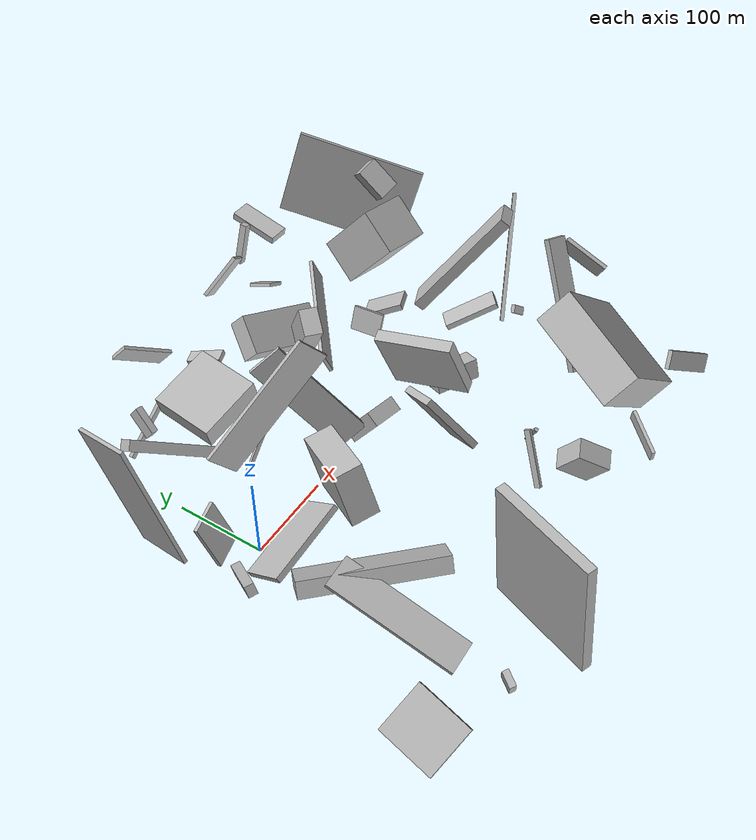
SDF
<sdf version="1.6">
 <world name="default">
  <scene>
   <sky><clouds><speed>12</speed></clouds></sky>
   <ambient>0.4 0.4 0.4 1</ambient>
   <background>0.7 0.7 0.7 1</background>
   <shadows>1</shadows>
  </scene>
  <gravity>0 0 -9.8066</gravity>
  <magnetic_field>6e-06 2.3e-05 -4.2e-05</magnetic_field>
  <physics default="0" name="default_physics" type="ode">
   <ode>
    <solver>
     <type>quick</type>
     <iters>10</iters>
     <sor>1.0</sor>
     <use_dynamic_moi_rescaling>0</use_dynamic_moi_rescaling>
    </solver>
    <constraints>
     <cfm>0</cfm>
     <erp>0.2</erp>
     <contact_max_correcting_vel>100</contact_max_correcting_vel>
     <contact_surface_layer>0.001</contact_surface_layer>
    </constraints>
   </ode>
   <max_step_size>0.004</max_step_size>
   <real_time_factor>1</real_time_factor>
   <real_time_update_rate>250</real_time_update_rate>
  </physics>
  <light name="sun" type="directional">
   <pose>0 0 10 0 0 0</pose>
   <diffuse>0.8 0.8 0.8 1</diffuse>
   <specular>0.2 0.2 0.2 1</specular>
   <attenuation>
    <range>1000</range>
    <constant>0.9</constant>
    <linear>0.01</linear>
    <quadratic>0.001</quadratic>
   </attenuation>
   <direction>-0.5 0.1 -0.9</direction>
  </light>
  <model name="building_1">
   <static>0</static>
   <pose>265.21856332734376 184.51601783542299 64.46360928404098 0.6908139448384183 0.07442384024645911 2.036456000822103</pose>
   <link name="link">
    <gravity>0</gravity>
    <pose>0 0 2.0 0 0 0</pose>
    <collision name="collision"><geometry><box><size>22 59 4</size></box></geometry></collision>
    <visual name="visual">
     <cast_shadows>0</cast_shadows>
     <geometry><box><size>22 59 4</size></box></geometry>
     <material>
      <script>
       <uri>model://HANNAS_wall/materials/scripts</uri>
       <uri>model://HANNAS_wall/materials/textures</uri>
       <name>vrc/HANNAS_wall</name>
      </script>
     </material>
    </visual>
   </link>
  </model>
  <model name="building_2">
   <static>0</static>
   <pose>328.64471478039263 -190.22076026287914 87.66876122134258 0.8125490074336644 -0.3598709219311265 1.2293084378363335</pose>
   <link name="link">
    <gravity>0</gravity>
    <pose>0 0 22.0 0 0 0</pose>
    <collision name="collision"><geometry><box><size>111 150 44</size></box></geometry></collision>
    <visual name="visual">
     <cast_shadows>0</cast_shadows>
     <geometry><box><size>111 150 44</size></box></geometry>
     <material>
      <script>
       <uri>model://HANNAS_wall/materials/scripts</uri>
       <uri>model://HANNAS_wall/materials/textures</uri>
       <name>vrc/HANNAS_wall</name>
      </script>
     </material>
    </visual>
   </link>
  </model>
  <model name="building_3">
   <static>0</static>
   <pose>317.6571069149756 84.82014768897221 17.64443904204941 -3.104940192499309 -1.1440837828563926 0.08218264495203423</pose>
   <link name="link">
    <gravity>0</gravity>
    <pose>0 0 2.0 0 0 0</pose>
    <collision name="collision"><geometry><box><size>28 36 4</size></box></geometry></collision>
    <visual name="visual">
     <cast_shadows>0</cast_shadows>
     <geometry><box><size>28 36 4</size></box></geometry>
     <material>
      <script>
       <uri>model://HANNAS_wall/materials/scripts</uri>
       <uri>model://HANNAS_wall/materials/textures</uri>
       <name>vrc/HANNAS_wall</name>
      </script>
     </material>
    </visual>
   </link>
  </model>
  <model name="building_4">
   <static>0</static>
   <pose>331.9274241886119 266.84225531832067 39.38900888820609 1.5164309389571287 -0.2989147448461797 -3.073223350557152</pose>
   <link name="link">
    <gravity>0</gravity>
    <pose>0 0 4.0 0 0 0</pose>
    <collision name="collision"><geometry><box><size>9 50 8</size></box></geometry></collision>
    <visual name="visual">
     <cast_shadows>0</cast_shadows>
     <geometry><box><size>9 50 8</size></box></geometry>
     <material>
      <script>
       <uri>model://HANNAS_wall/materials/scripts</uri>
       <uri>model://HANNAS_wall/materials/textures</uri>
       <name>vrc/HANNAS_wall</name>
      </script>
     </material>
    </visual>
   </link>
  </model>
  <model name="building_5">
   <static>0</static>
   <pose>202.1581988308891 -83.73595705563194 56.36848250867061 1.0411006923561188 0.3923190019475035 1.1186620954028903</pose>
   <link name="link">
    <gravity>0</gravity>
    <pose>0 0 4.0 0 0 0</pose>
    <collision name="collision"><geometry><box><size>46 81 8</size></box></geometry></collision>
    <visual name="visual">
     <cast_shadows>0</cast_shadows>
     <geometry><box><size>46 81 8</size></box></geometry>
     <material>
      <script>
       <uri>model://HANNAS_wall/materials/scripts</uri>
       <uri>model://HANNAS_wall/materials/textures</uri>
       <name>vrc/HANNAS_wall</name>
      </script>
     </material>
    </visual>
   </link>
  </model>
  <model name="building_6">
   <static>0</static>
   <pose>385.00221197579236 -66.46883736437205 61.60739721136558 2.3489417181520196 0.12633181593935808 1.8454128748856702</pose>
   <link name="link">
    <gravity>0</gravity>
    <pose>0 0 22.0 0 0 0</pose>
    <collision name="collision"><geometry><box><size>4 9 44</size></box></geometry></collision>
    <visual name="visual">
     <cast_shadows>0</cast_shadows>
     <geometry><box><size>4 9 44</size></box></geometry>
     <material>
      <script>
       <uri>model://HANNAS_wall/materials/scripts</uri>
       <uri>model://HANNAS_wall/materials/textures</uri>
       <name>vrc/HANNAS_wall</name>
      </script>
     </material>
    </visual>
   </link>
  </model>
  <model name="building_7">
   <static>0</static>
   <pose>97.44094176299929 139.80659487148694 65.88014264446177 2.9160895541059 -0.03517283254997474 1.465190993637546</pose>
   <link name="link">
    <gravity>0</gravity>
    <pose>0 0 12.0 0 0 0</pose>
    <collision name="collision"><geometry><box><size>74 74 24</size></box></geometry></collision>
    <visual name="visual">
     <cast_shadows>0</cast_shadows>
     <geometry><box><size>74 74 24</size></box></geometry>
     <material>
      <script>
       <uri>model://HANNAS_wall/materials/scripts</uri>
       <uri>model://HANNAS_wall/materials/textures</uri>
       <name>vrc/HANNAS_wall</name>
      </script>
     </material>
    </visual>
   </link>
  </model>
  <model name="building_8">
   <static>0</static>
   <pose>46.27109458085706 187.68211550726627 34.1573580077763 -1.7635629406961664 0.5972119971162401 -1.8299132966659717</pose>
   <link name="link">
    <gravity>0</gravity>
    <pose>0 0 4.0 0 0 0</pose>
    <collision name="collision"><geometry><box><size>31 16 8</size></box></geometry></collision>
    <visual name="visual">
     <cast_shadows>0</cast_shadows>
     <geometry><box><size>31 16 8</size></box></geometry>
     <material>
      <script>
       <uri>model://HANNAS_wall/materials/scripts</uri>
       <uri>model://HANNAS_wall/materials/textures</uri>
       <name>vrc/HANNAS_wall</name>
      </script>
     </material>
    </visual>
   </link>
  </model>
  <model name="building_9">
   <static>0</static>
   <pose>464.33969402716286 -132.99966605019546 89.13782604947892 1.0727289330541918 0.23367158484802786 -3.1383034386376285</pose>
   <link name="link">
    <gravity>0</gravity>
    <pose>0 0 26.5 0 0 0</pose>
    <collision name="collision"><geometry><box><size>5 22 53</size></box></geometry></collision>
    <visual name="visual">
     <cast_shadows>0</cast_shadows>
     <geometry><box><size>5 22 53</size></box></geometry>
     <material>
      <script>
       <uri>model://HANNAS_wall/materials/scripts</uri>
       <uri>model://HANNAS_wall/materials/textures</uri>
       <name>vrc/HANNAS_wall</name>
      </script>
     </material>
    </visual>
   </link>
  </model>
  <model name="building_10">
   <static>0</static>
   <pose>357.4033292517219 236.10567688934788 48.10613483106374 0.0824762773227775 -1.4192140599474705 -1.7229216356901125</pose>
   <link name="link">
    <gravity>0</gravity>
    <pose>0 0 30.0 0 0 0</pose>
    <collision name="collision"><geometry><box><size>9 23 60</size></box></geometry></collision>
    <visual name="visual">
     <cast_shadows>0</cast_shadows>
     <geometry><box><size>9 23 60</size></box></geometry>
     <material>
      <script>
       <uri>model://HANNAS_wall/materials/scripts</uri>
       <uri>model://HANNAS_wall/materials/textures</uri>
       <name>vrc/HANNAS_wall</name>
      </script>
     </material>
    </visual>
   </link>
  </model>
  <model name="building_11">
   <static>0</static>
   <pose>327.7306128091706 18.30774589388291 78.18219950126488 -0.6289102928126492 -0.08888108869729276 -2.7355845074651444</pose>
   <link name="link">
    <gravity>0</gravity>
    <pose>0 0 75.0 0 0 0</pose>
    <collision name="collision"><geometry><box><size>29 12 150</size></box></geometry></collision>
    <visual name="visual">
     <cast_shadows>0</cast_shadows>
     <geometry><box><size>29 12 150</size></box></geometry>
     <material>
      <script>
       <uri>model://HANNAS_wall/materials/scripts</uri>
       <uri>model://HANNAS_wall/materials/textures</uri>
       <name>vrc/HANNAS_wall</name>
      </script>
     </material>
    </visual>
   </link>
  </model>
  <model name="building_12">
   <static>0</static>
   <pose>-66.99200167604985 -259.3309068329781 29.86132267613422 -2.597233224709545 1.0079027287478066 0.34873878519639095</pose>
   <link name="link">
    <gravity>0</gravity>
    <pose>0 0 28.0 0 0 0</pose>
    <collision name="collision"><geometry><box><size>11 63 56</size></box></geometry></collision>
    <visual name="visual">
     <cast_shadows>0</cast_shadows>
     <geometry><box><size>11 63 56</size></box></geometry>
     <material>
      <script>
       <uri>model://HANNAS_wall/materials/scripts</uri>
       <uri>model://HANNAS_wall/materials/textures</uri>
       <name>vrc/HANNAS_wall</name>
      </script>
     </material>
    </visual>
   </link>
  </model>
  <model name="building_13">
   <static>0</static>
   <pose>19.555775834697208 -119.53058251219682 40.05050934233191 0.9923856038388961 0.004344139414071109 -0.7912219682348802</pose>
   <link name="link">
    <gravity>0</gravity>
    <pose>0 0 18.0 0 0 0</pose>
    <collision name="collision"><geometry><box><size>150 18 36</size></box></geometry></collision>
    <visual name="visual">
     <cast_shadows>0</cast_shadows>
     <geometry><box><size>150 18 36</size></box></geometry>
     <material>
      <script>
       <uri>model://HANNAS_wall/materials/scripts</uri>
       <uri>model://HANNAS_wall/materials/textures</uri>
       <name>vrc/HANNAS_wall</name>
      </script>
     </material>
    </visual>
   </link>
  </model>
  <model name="building_14">
   <static>0</static>
   <pose>-58.04304506395429 -30.00019462312246 32.083729900454486 0.5466696450437737 0.17057812996199656 2.6197668270785543</pose>
   <link name="link">
    <gravity>0</gravity>
    <pose>0 0 6.0 0 0 0</pose>
    <collision name="collision"><geometry><box><size>10 62 12</size></box></geometry></collision>
    <visual name="visual">
     <cast_shadows>0</cast_shadows>
     <geometry><box><size>10 62 12</size></box></geometry>
     <material>
      <script>
       <uri>model://HANNAS_wall/materials/scripts</uri>
       <uri>model://HANNAS_wall/materials/textures</uri>
       <name>vrc/HANNAS_wall</name>
      </script>
     </material>
    </visual>
   </link>
  </model>
  <model name="building_15">
   <static>0</static>
   <pose>212.95386073540806 122.66360236571569 39.571967928698555 0.9381762908509872 -0.34827626853729887 2.83561194511519</pose>
   <link name="link">
    <gravity>0</gravity>
    <pose>0 0 22.0 0 0 0</pose>
    <collision name="collision"><geometry><box><size>93 25 44</size></box></geometry></collision>
    <visual name="visual">
     <cast_shadows>0</cast_shadows>
     <geometry><box><size>93 25 44</size></box></geometry>
     <material>
      <script>
       <uri>model://HANNAS_wall/materials/scripts</uri>
       <uri>model://HANNAS_wall/materials/textures</uri>
       <name>vrc/HANNAS_wall</name>
      </script>
     </material>
    </visual>
   </link>
  </model>
  <model name="building_16">
   <static>0</static>
   <pose>432.34963699438754 142.68460319219628 123.12292061015373 2.654695509780527 -0.7302980891216749 1.673761617309005</pose>
   <link name="link">
    <gravity>0</gravity>
    <pose>0 0 11.0 0 0 0</pose>
    <collision name="collision"><geometry><box><size>39 25 22</size></box></geometry></collision>
    <visual name="visual">
     <cast_shadows>0</cast_shadows>
     <geometry><box><size>39 25 22</size></box></geometry>
     <material>
      <script>
       <uri>model://HANNAS_wall/materials/scripts</uri>
       <uri>model://HANNAS_wall/materials/textures</uri>
       <name>vrc/HANNAS_wall</name>
      </script>
     </material>
    </visual>
   </link>
  </model>
  <model name="building_17">
   <static>0</static>
   <pose>29.09484588014437 128.06589483551542 47.44357928841041 -2.32829288619284 0.45638369369764287 -0.6664755146609577</pose>
   <link name="link">
    <gravity>0</gravity>
    <pose>0 0 12.5 0 0 0</pose>
    <collision name="collision"><geometry><box><size>95 12 25</size></box></geometry></collision>
    <visual name="visual">
     <cast_shadows>0</cast_shadows>
     <geometry><box><size>95 12 25</size></box></geometry>
     <material>
      <script>
       <uri>model://HANNAS_wall/materials/scripts</uri>
       <uri>model://HANNAS_wall/materials/textures</uri>
       <name>vrc/HANNAS_wall</name>
      </script>
     </material>
    </visual>
   </link>
  </model>
  <model name="building_18">
   <static>0</static>
   <pose>-24.99963521717325 -66.32042261069773 86.34203610984845 0.27769424703055545 -0.6264185467452116 -1.7920855056713711</pose>
   <link name="link">
    <gravity>0</gravity>
    <pose>0 0 3.0 0 0 0</pose>
    <collision name="collision"><geometry><box><size>55 89 6</size></box></geometry></collision>
    <visual name="visual">
     <cast_shadows>0</cast_shadows>
     <geometry><box><size>55 89 6</size></box></geometry>
     <material>
      <script>
       <uri>model://HANNAS_wall/materials/scripts</uri>
       <uri>model://HANNAS_wall/materials/textures</uri>
       <name>vrc/HANNAS_wall</name>
      </script>
     </material>
    </visual>
   </link>
  </model>
  <model name="building_19">
   <static>0</static>
   <pose>441.18326933755264 189.45827209062813 78.70286360650981 1.7042009371781563 -0.2674405350316269 1.9613524671320002</pose>
   <link name="link">
    <gravity>0</gravity>
    <pose>0 0 2.0 0 0 0</pose>
    <collision name="collision"><geometry><box><size>150 107 4</size></box></geometry></collision>
    <visual name="visual">
     <cast_shadows>0</cast_shadows>
     <geometry><box><size>150 107 4</size></box></geometry>
     <material>
      <script>
       <uri>model://HANNAS_wall/materials/scripts</uri>
       <uri>model://HANNAS_wall/materials/textures</uri>
       <name>vrc/HANNAS_wall</name>
      </script>
     </material>
    </visual>
   </link>
  </model>
  <model name="building_20">
   <static>0</static>
   <pose>27.089855697704607 62.28093358764783 65.29167649971627 -0.08795963705164472 0.8747524765626751 -0.47331563995794157</pose>
   <link name="link">
    <gravity>0</gravity>
    <pose>0 0 75.0 0 0 0</pose>
    <collision name="collision"><geometry><box><size>43 4 150</size></box></geometry></collision>
    <visual name="visual">
     <cast_shadows>0</cast_shadows>
     <geometry><box><size>43 4 150</size></box></geometry>
     <material>
      <script>
       <uri>model://HANNAS_wall/materials/scripts</uri>
       <uri>model://HANNAS_wall/materials/textures</uri>
       <name>vrc/HANNAS_wall</name>
      </script>
     </material>
    </visual>
   </link>
  </model>
  <model name="building_21">
   <static>0</static>
   <pose>395.70985725670835 -37.816306861568016 52.91518112563747 2.003636194343523 0.07392361397343582 -2.380251354311081</pose>
   <link name="link">
    <gravity>0</gravity>
    <pose>0 0 31.0 0 0 0</pose>
    <collision name="collision"><geometry><box><size>20 8 62</size></box></geometry></collision>
    <visual name="visual">
     <cast_shadows>0</cast_shadows>
     <geometry><box><size>20 8 62</size></box></geometry>
     <material>
      <script>
       <uri>model://HANNAS_wall/materials/scripts</uri>
       <uri>model://HANNAS_wall/materials/textures</uri>
       <name>vrc/HANNAS_wall</name>
      </script>
     </material>
    </visual>
   </link>
  </model>
  <model name="building_22">
   <static>0</static>
   <pose>261.5646470436602 -163.67714748189616 26.264165691659194 0.3516222922379382 -1.0883993384659651 -1.7436803925989128</pose>
   <link name="link">
    <gravity>0</gravity>
    <pose>0 0 2.0 0 0 0</pose>
    <collision name="collision"><geometry><box><size>25 4 4</size></box></geometry></collision>
    <visual name="visual">
     <cast_shadows>0</cast_shadows>
     <geometry><box><size>25 4 4</size></box></geometry>
     <material>
      <script>
       <uri>model://HANNAS_wall/materials/scripts</uri>
       <uri>model://HANNAS_wall/materials/textures</uri>
       <name>vrc/HANNAS_wall</name>
      </script>
     </material>
    </visual>
   </link>
  </model>
  <model name="building_23">
   <static>0</static>
   <pose>202.35609051820526 -15.77254288764853 31.06816132876979 1.4432341652562484 0.5977823074192757 -1.7893823661514494</pose>
   <link name="link">
    <gravity>0</gravity>
    <pose>0 0 18.5 0 0 0</pose>
    <collision name="collision"><geometry><box><size>17 51 37</size></box></geometry></collision>
    <visual name="visual">
     <cast_shadows>0</cast_shadows>
     <geometry><box><size>17 51 37</size></box></geometry>
     <material>
      <script>
       <uri>model://HANNAS_wall/materials/scripts</uri>
       <uri>model://HANNAS_wall/materials/textures</uri>
       <name>vrc/HANNAS_wall</name>
      </script>
     </material>
    </visual>
   </link>
  </model>
  <model name="building_24">
   <static>0</static>
   <pose>89.46015456395038 -221.84478063762728 78.76038289278821 -0.8726561924801973 -1.5185023387323 2.090949116879239</pose>
   <link name="link">
    <gravity>0</gravity>
    <pose>0 0 62.0 0 0 0</pose>
    <collision name="collision"><geometry><box><size>150 11 124</size></box></geometry></collision>
    <visual name="visual">
     <cast_shadows>0</cast_shadows>
     <geometry><box><size>150 11 124</size></box></geometry>
     <material>
      <script>
       <uri>model://HANNAS_wall/materials/scripts</uri>
       <uri>model://HANNAS_wall/materials/textures</uri>
       <name>vrc/HANNAS_wall</name>
      </script>
     </material>
    </visual>
   </link>
  </model>
  <model name="building_25">
   <static>0</static>
   <pose>418.72467675669714 112.10614817451543 80.17733810006797 2.4842749909456567 -0.19216767339485802 3.029833811014664</pose>
   <link name="link">
    <gravity>0</gravity>
    <pose>0 0 42.0 0 0 0</pose>
    <collision name="collision"><geometry><box><size>62 53 84</size></box></geometry></collision>
    <visual name="visual">
     <cast_shadows>0</cast_shadows>
     <geometry><box><size>62 53 84</size></box></geometry>
     <material>
      <script>
       <uri>model://HANNAS_wall/materials/scripts</uri>
       <uri>model://HANNAS_wall/materials/textures</uri>
       <name>vrc/HANNAS_wall</name>
      </script>
     </material>
    </visual>
   </link>
  </model>
  <model name="building_26">
   <static>0</static>
   <pose>350.58592943010467 78.9830616935457 17.23930877700365 0.42448736457603803 -0.18053254721408055 -2.744375180266332</pose>
   <link name="link">
    <gravity>0</gravity>
    <pose>0 0 3.5 0 0 0</pose>
    <collision name="collision"><geometry><box><size>31 46 7</size></box></geometry></collision>
    <visual name="visual">
     <cast_shadows>0</cast_shadows>
     <geometry><box><size>31 46 7</size></box></geometry>
     <material>
      <script>
       <uri>model://HANNAS_wall/materials/scripts</uri>
       <uri>model://HANNAS_wall/materials/textures</uri>
       <name>vrc/HANNAS_wall</name>
      </script>
     </material>
    </visual>
   </link>
  </model>
  <model name="building_27">
   <static>0</static>
   <pose>190.27453648014637 195.19205983390717 9.394015502677707 -3.1015723952218694 1.2921730040538217 -1.194032304792987</pose>
   <link name="link">
    <gravity>0</gravity>
    <pose>0 0 20.5 0 0 0</pose>
    <collision name="collision"><geometry><box><size>6 16 41</size></box></geometry></collision>
    <visual name="visual">
     <cast_shadows>0</cast_shadows>
     <geometry><box><size>6 16 41</size></box></geometry>
     <material>
      <script>
       <uri>model://HANNAS_wall/materials/scripts</uri>
       <uri>model://HANNAS_wall/materials/textures</uri>
       <name>vrc/HANNAS_wall</name>
      </script>
     </material>
    </visual>
   </link>
  </model>
  <model name="building_28">
   <static>0</static>
   <pose>457.7618960834083 -250.10428482993484 31.363635624106948 -2.6909177257374384 -0.5134237169890955 2.624741862698825</pose>
   <link name="link">
    <gravity>0</gravity>
    <pose>0 0 10.5 0 0 0</pose>
    <collision name="collision"><geometry><box><size>60 6 21</size></box></geometry></collision>
    <visual name="visual">
     <cast_shadows>0</cast_shadows>
     <geometry><box><size>60 6 21</size></box></geometry>
     <material>
      <script>
       <uri>model://HANNAS_wall/materials/scripts</uri>
       <uri>model://HANNAS_wall/materials/textures</uri>
       <name>vrc/HANNAS_wall</name>
      </script>
     </material>
    </visual>
   </link>
  </model>
  <model name="building_29">
   <static>0</static>
   <pose>330.2748259365641 -260.3851756561223 20.379756126510085 1.6500534182715014 -1.3625842675442523 -2.3419593841868473</pose>
   <link name="link">
    <gravity>0</gravity>
    <pose>0 0 2.0 0 0 0</pose>
    <collision name="collision"><geometry><box><size>14 54 4</size></box></geometry></collision>
    <visual name="visual">
     <cast_shadows>0</cast_shadows>
     <geometry><box><size>14 54 4</size></box></geometry>
     <material>
      <script>
       <uri>model://HANNAS_wall/materials/scripts</uri>
       <uri>model://HANNAS_wall/materials/textures</uri>
       <name>vrc/HANNAS_wall</name>
      </script>
     </material>
    </visual>
   </link>
  </model>
  <model name="building_30">
   <static>0</static>
   <pose>238.80792119283944 -221.331290115734 36.51896936076489 0.3500818924453829 0.5757045891596311 -0.9332908113139834</pose>
   <link name="link">
    <gravity>0</gravity>
    <pose>0 0 19.0 0 0 0</pose>
    <collision name="collision"><geometry><box><size>39 22 38</size></box></geometry></collision>
    <visual name="visual">
     <cast_shadows>0</cast_shadows>
     <geometry><box><size>39 22 38</size></box></geometry>
     <material>
      <script>
       <uri>model://HANNAS_wall/materials/scripts</uri>
       <uri>model://HANNAS_wall/materials/textures</uri>
       <name>vrc/HANNAS_wall</name>
      </script>
     </material>
    </visual>
   </link>
  </model>
  <model name="building_31">
   <static>0</static>
   <pose>300.0569226820373 -35.052611166556574 21.610214125345408 -0.027390806239969666 1.2943969992643096 -2.0510654913858812</pose>
   <link name="link">
    <gravity>0</gravity>
    <pose>0 0 10.5 0 0 0</pose>
    <collision name="collision"><geometry><box><size>23 51 21</size></box></geometry></collision>
    <visual name="visual">
     <cast_shadows>0</cast_shadows>
     <geometry><box><size>23 51 21</size></box></geometry>
     <material>
      <script>
       <uri>model://HANNAS_wall/materials/scripts</uri>
       <uri>model://HANNAS_wall/materials/textures</uri>
       <name>vrc/HANNAS_wall</name>
      </script>
     </material>
    </visual>
   </link>
  </model>
  <model name="building_32">
   <static>0</static>
   <pose>355.19144203101314 -68.95629382366184 68.11447853631189 0.7278762902012962 -0.11050016681360979 2.1199266582744074</pose>
   <link name="link">
    <gravity>0</gravity>
    <pose>0 0 69.5 0 0 0</pose>
    <collision name="collision"><geometry><box><size>4 4 139</size></box></geometry></collision>
    <visual name="visual">
     <cast_shadows>0</cast_shadows>
     <geometry><box><size>4 4 139</size></box></geometry>
     <material>
      <script>
       <uri>model://HANNAS_wall/materials/scripts</uri>
       <uri>model://HANNAS_wall/materials/textures</uri>
       <name>vrc/HANNAS_wall</name>
      </script>
     </material>
    </visual>
   </link>
  </model>
  <model name="building_33">
   <static>0</static>
   <pose>136.40438692583544 32.73000993790909 82.26568341401165 1.3197511301625593 -0.6141945236629995 -0.6271130553899843</pose>
   <link name="link">
    <gravity>0</gravity>
    <pose>0 0 2.0 0 0 0</pose>
    <collision name="collision"><geometry><box><size>39 138 4</size></box></geometry></collision>
    <visual name="visual">
     <cast_shadows>0</cast_shadows>
     <geometry><box><size>39 138 4</size></box></geometry>
     <material>
      <script>
       <uri>model://HANNAS_wall/materials/scripts</uri>
       <uri>model://HANNAS_wall/materials/textures</uri>
       <name>vrc/HANNAS_wall</name>
      </script>
     </material>
    </visual>
   </link>
  </model>
  <model name="building_34">
   <static>0</static>
   <pose>418.1404468185772 -118.36078831793373 68.12285936381144 2.1975538698764625 -0.1646859418486115 2.700440816596306</pose>
   <link name="link">
    <gravity>0</gravity>
    <pose>0 0 4.5 0 0 0</pose>
    <collision name="collision"><geometry><box><size>22 150 9</size></box></geometry></collision>
    <visual name="visual">
     <cast_shadows>0</cast_shadows>
     <geometry><box><size>22 150 9</size></box></geometry>
     <material>
      <script>
       <uri>model://HANNAS_wall/materials/scripts</uri>
       <uri>model://HANNAS_wall/materials/textures</uri>
       <name>vrc/HANNAS_wall</name>
      </script>
     </material>
    </visual>
   </link>
  </model>
  <model name="building_35">
   <static>0</static>
   <pose>138.2876467097551 90.64200303463667 12.40970071344716 3.049600248166621 -0.7936676855167725 1.9661205300734903</pose>
   <link name="link">
    <gravity>0</gravity>
    <pose>0 0 2.0 0 0 0</pose>
    <collision name="collision"><geometry><box><size>4 136 4</size></box></geometry></collision>
    <visual name="visual">
     <cast_shadows>0</cast_shadows>
     <geometry><box><size>4 136 4</size></box></geometry>
     <material>
      <script>
       <uri>model://HANNAS_wall/materials/scripts</uri>
       <uri>model://HANNAS_wall/materials/textures</uri>
       <name>vrc/HANNAS_wall</name>
      </script>
     </material>
    </visual>
   </link>
  </model>
  <model name="building_36">
   <static>0</static>
   <pose>-77.28654021930107 81.78968377897698 107.59837901236892 1.4349376289809468 0.27145171655728023 1.3679880755665068</pose>
   <link name="link">
    <gravity>0</gravity>
    <pose>0 0 2.0 0 0 0</pose>
    <collision name="collision"><geometry><box><size>69 150 4</size></box></geometry></collision>
    <visual name="visual">
     <cast_shadows>0</cast_shadows>
     <geometry><box><size>69 150 4</size></box></geometry>
     <material>
      <script>
       <uri>model://HANNAS_wall/materials/scripts</uri>
       <uri>model://HANNAS_wall/materials/textures</uri>
       <name>vrc/HANNAS_wall</name>
      </script>
     </material>
    </visual>
   </link>
  </model>
  <model name="building_37">
   <static>0</static>
   <pose>2.4726309027449425 -174.86044604788316 45.01201875251354 1.7783632234412048 -1.2297360228383336 -1.7317807229429658</pose>
   <link name="link">
    <gravity>0</gravity>
    <pose>0 0 18.5 0 0 0</pose>
    <collision name="collision"><geometry><box><size>4 143 37</size></box></geometry></collision>
    <visual name="visual">
     <cast_shadows>0</cast_shadows>
     <geometry><box><size>4 143 37</size></box></geometry>
     <material>
      <script>
       <uri>model://HANNAS_wall/materials/scripts</uri>
       <uri>model://HANNAS_wall/materials/textures</uri>
       <name>vrc/HANNAS_wall</name>
      </script>
     </material>
    </visual>
   </link>
  </model>
  <model name="building_38">
   <static>0</static>
   <pose>94.20816248774074 -18.88784504599561 65.59527001446351 -0.6827647399660458 -1.2883414549258259 1.7258530311075482</pose>
   <link name="link">
    <gravity>0</gravity>
    <pose>0 0 37.5 0 0 0</pose>
    <collision name="collision"><geometry><box><size>65 31 75</size></box></geometry></collision>
    <visual name="visual">
     <cast_shadows>0</cast_shadows>
     <geometry><box><size>65 31 75</size></box></geometry>
     <material>
      <script>
       <uri>model://HANNAS_wall/materials/scripts</uri>
       <uri>model://HANNAS_wall/materials/textures</uri>
       <name>vrc/HANNAS_wall</name>
      </script>
     </material>
    </visual>
   </link>
  </model>
  <model name="building_39">
   <static>0</static>
   <pose>211.02911331113526 75.29869072328232 99.37411936880153 1.4673782054041413 -1.0202810684195176 -2.165993766922038</pose>
   <link name="link">
    <gravity>0</gravity>
    <pose>0 0 10.0 0 0 0</pose>
    <collision name="collision"><geometry><box><size>57 29 20</size></box></geometry></collision>
    <visual name="visual">
     <cast_shadows>0</cast_shadows>
     <geometry><box><size>57 29 20</size></box></geometry>
     <material>
      <script>
       <uri>model://HANNAS_wall/materials/scripts</uri>
       <uri>model://HANNAS_wall/materials/textures</uri>
       <name>vrc/HANNAS_wall</name>
      </script>
     </material>
    </visual>
   </link>
  </model>
  <model name="building_40">
   <static>0</static>
   <pose>-36.21375906590413 10.404658097815284 31.022654062618887 0.11353285672274131 -0.30567541918742214 -1.3976602818940245</pose>
   <link name="link">
    <gravity>0</gravity>
    <pose>0 0 28.0 0 0 0</pose>
    <collision name="collision"><geometry><box><size>4 35 56</size></box></geometry></collision>
    <visual name="visual">
     <cast_shadows>0</cast_shadows>
     <geometry><box><size>4 35 56</size></box></geometry>
     <material>
      <script>
       <uri>model://HANNAS_wall/materials/scripts</uri>
       <uri>model://HANNAS_wall/materials/textures</uri>
       <name>vrc/HANNAS_wall</name>
      </script>
     </material>
    </visual>
   </link>
  </model>
  <model name="building_41">
   <static>0</static>
   <pose>140.58699346671676 257.4046231403222 28.95472635357767 -2.560657415823665 -0.4092711696217105 0.8077363465761833</pose>
   <link name="link">
    <gravity>0</gravity>
    <pose>0 0 14.0 0 0 0</pose>
    <collision name="collision"><geometry><box><size>4 60 28</size></box></geometry></collision>
    <visual name="visual">
     <cast_shadows>0</cast_shadows>
     <geometry><box><size>4 60 28</size></box></geometry>
     <material>
      <script>
       <uri>model://HANNAS_wall/materials/scripts</uri>
       <uri>model://HANNAS_wall/materials/textures</uri>
       <name>vrc/HANNAS_wall</name>
      </script>
     </material>
    </visual>
   </link>
  </model>
  <model name="building_42">
   <static>0</static>
   <pose>278.69128414822995 260.85211211699306 34.168400616005286 -2.2054142838129054 -0.6865760755972373 -2.640137975403893</pose>
   <link name="link">
    <gravity>0</gravity>
    <pose>0 0 2.0 0 0 0</pose>
    <collision name="collision"><geometry><box><size>48 55 4</size></box></geometry></collision>
    <visual name="visual">
     <cast_shadows>0</cast_shadows>
     <geometry><box><size>48 55 4</size></box></geometry>
     <material>
      <script>
       <uri>model://HANNAS_wall/materials/scripts</uri>
       <uri>model://HANNAS_wall/materials/textures</uri>
       <name>vrc/HANNAS_wall</name>
      </script>
     </material>
    </visual>
   </link>
  </model>
  <model name="building_43">
   <static>0</static>
   <pose>-7.495898117726831 -285.29202329235716 27.264497136364632 1.963674501716381 -0.21511731788698887 -0.6359549718600244</pose>
   <link name="link">
    <gravity>0</gravity>
    <pose>0 0 8.5 0 0 0</pose>
    <collision name="collision"><geometry><box><size>7 37 17</size></box></geometry></collision>
    <visual name="visual">
     <cast_shadows>0</cast_shadows>
     <geometry><box><size>7 37 17</size></box></geometry>
     <material>
      <script>
       <uri>model://HANNAS_wall/materials/scripts</uri>
       <uri>model://HANNAS_wall/materials/textures</uri>
       <name>vrc/HANNAS_wall</name>
      </script>
     </material>
    </visual>
   </link>
  </model>
  <model name="building_44">
   <static>0</static>
   <pose>250.23061784808252 -47.161486059396154 52.69375082545334 0.16990784060960704 0.31188904250001187 -2.91789430548627</pose>
   <link name="link">
    <gravity>0</gravity>
    <pose>0 0 41.5 0 0 0</pose>
    <collision name="collision"><geometry><box><size>13 84 83</size></box></geometry></collision>
    <visual name="visual">
     <cast_shadows>0</cast_shadows>
     <geometry><box><size>13 84 83</size></box></geometry>
     <material>
      <script>
       <uri>model://HANNAS_wall/materials/scripts</uri>
       <uri>model://HANNAS_wall/materials/textures</uri>
       <name>vrc/HANNAS_wall</name>
      </script>
     </material>
    </visual>
   </link>
  </model>
  <model name="building_45">
   <static>0</static>
   <pose>213.95334636476352 -192.03522777992197 51.64060812701159 2.05614342708472 -0.3014158252691858 3.0222491029168883</pose>
   <link name="link">
    <gravity>0</gravity>
    <pose>0 0 3.5 0 0 0</pose>
    <collision name="collision"><geometry><box><size>4 63 7</size></box></geometry></collision>
    <visual name="visual">
     <cast_shadows>0</cast_shadows>
     <geometry><box><size>4 63 7</size></box></geometry>
     <material>
      <script>
       <uri>model://HANNAS_wall/materials/scripts</uri>
       <uri>model://HANNAS_wall/materials/textures</uri>
       <name>vrc/HANNAS_wall</name>
      </script>
     </material>
    </visual>
   </link>
  </model>
  <model name="building_46">
   <static>0</static>
   <pose>276.440410468323 112.05498362526737 35.67990756918139 0.02719822937543533 -0.3681291457087026 -0.8886977297952088</pose>
   <link name="link">
    <gravity>0</gravity>
    <pose>0 0 14.0 0 0 0</pose>
    <collision name="collision"><geometry><box><size>4 150 28</size></box></geometry></collision>
    <visual name="visual">
     <cast_shadows>0</cast_shadows>
     <geometry><box><size>4 150 28</size></box></geometry>
     <material>
      <script>
       <uri>model://HANNAS_wall/materials/scripts</uri>
       <uri>model://HANNAS_wall/materials/textures</uri>
       <name>vrc/HANNAS_wall</name>
      </script>
     </material>
    </visual>
   </link>
  </model>
  <model name="building_47">
   <static>0</static>
   <pose>100.09224738206896 201.23351855490733 25.08031379060892 -2.2977705327502975 -0.6757575309660934 2.114756748542369</pose>
   <link name="link">
    <gravity>0</gravity>
    <pose>0 0 38.5 0 0 0</pose>
    <collision name="collision"><geometry><box><size>4 11 77</size></box></geometry></collision>
    <visual name="visual">
     <cast_shadows>0</cast_shadows>
     <geometry><box><size>4 11 77</size></box></geometry>
     <material>
      <script>
       <uri>model://HANNAS_wall/materials/scripts</uri>
       <uri>model://HANNAS_wall/materials/textures</uri>
       <name>vrc/HANNAS_wall</name>
      </script>
     </material>
    </visual>
   </link>
  </model>
 </world>
</sdf>
